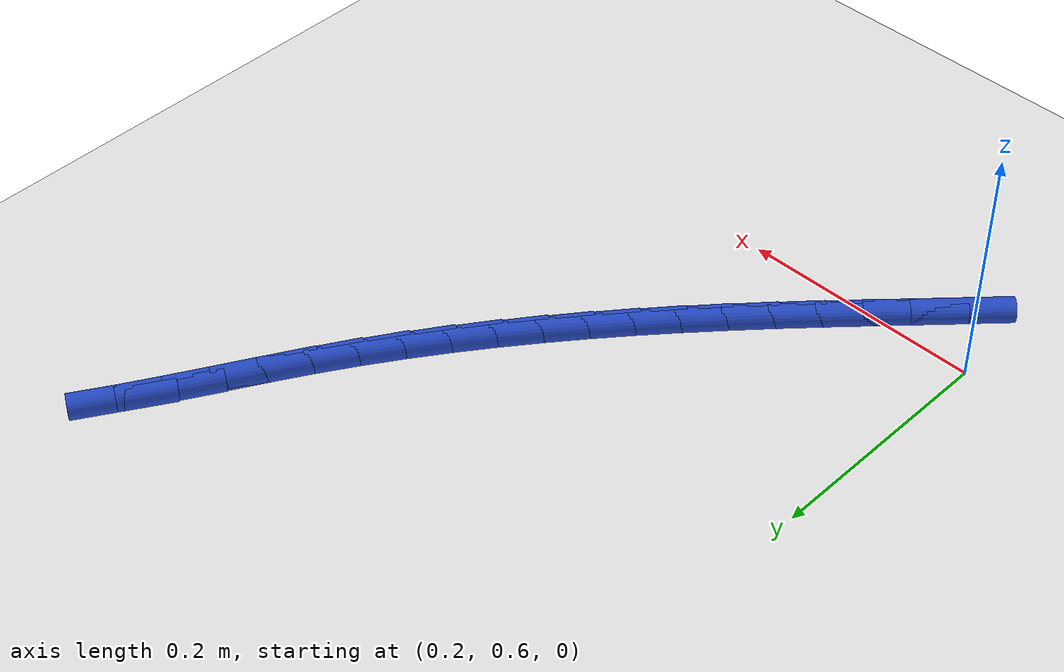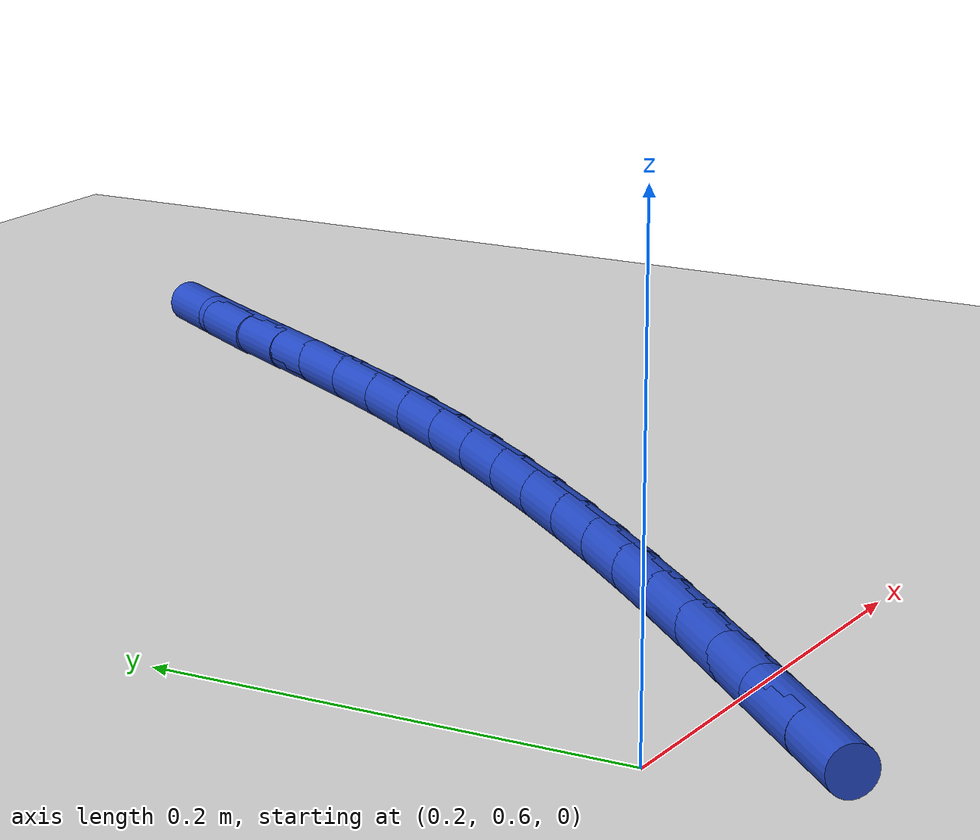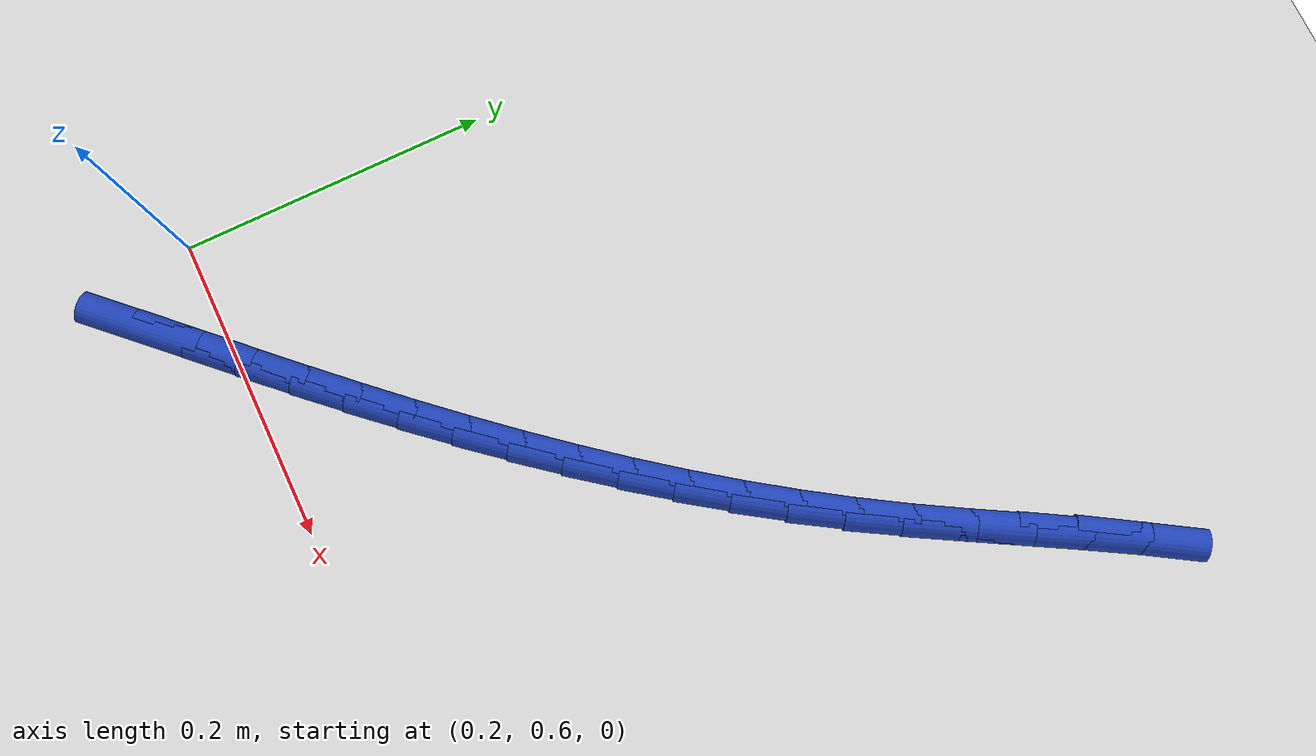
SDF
<sdf version="1.6">
 <world name="default">
  <model name="ground_plane">
   <static>1</static>
   <link name="link">
    <collision name="collision">
     <geometry><plane><normal>0 0 1</normal><size>100 100</size></plane></geometry>
     <surface><friction><ode><mu>100</mu><mu2>50</mu2></ode></friction></surface>
    </collision>
    <visual name="visual">
     <cast_shadows>0</cast_shadows>
     <geometry><plane><normal>0 0 1</normal><size>100 100</size></plane></geometry>
     <material>
      <script><uri>file://media/materials/scripts/gazebo.material</uri><name>Gazebo/WhiteGlow</name></script>
     </material>
    </visual>
   </link>
  </model>
  <model name="line">
   <link name="link_18">
    <pose>0.2377487492874765 0.5561914718747744 0.01 0 1.57 0.805005337333097</pose>
    <collision name="collision">
     <geometry><cylinder><radius>0.01</radius><length>0.08</length></cylinder></geometry>
    </collision>
    <visual name="visual">
     <material>
      <script><name>Gazebo/Blue</name><uri>file://media/materials/scripts/gazebo.material</uri></script>
     </material>
     <geometry><cylinder><radius>0.01</radius><length>0.08</length></cylinder></geometry>
    </visual>
   </link>
   <link name="link_19">
    <pose>0.2624871182830065 0.5819194705403488 0.01 0 1.57 0.8023469389558977</pose>
    <collision name="collision">
     <geometry><cylinder><radius>0.01</radius><length>0.08</length></cylinder></geometry>
    </collision>
    <visual name="visual">
     <material>
      <script><name>Gazebo/Blue</name><uri>file://media/materials/scripts/gazebo.material</uri></script>
     </material>
     <geometry><cylinder><radius>0.01</radius><length>0.08</length></cylinder></geometry>
    </visual>
   </link>
   <link name="link_20">
    <pose>0.2872773068792155 0.6075645571575645 0.01 0 1.57 0.8054867972096207</pose>
    <collision name="collision">
     <geometry><cylinder><radius>0.01</radius><length>0.08</length></cylinder></geometry>
    </collision>
    <visual name="visual">
     <material>
      <script><name>Gazebo/Blue</name><uri>file://media/materials/scripts/gazebo.material</uri></script>
     </material>
     <geometry><cylinder><radius>0.01</radius><length>0.08</length></cylinder></geometry>
    </visual>
   </link>
   <link name="link_21">
    <pose>0.31191539208825364 0.6332129652257473 0.01 0 1.57 0.8142932229291717</pose>
    <collision name="collision">
     <geometry><cylinder><radius>0.01</radius><length>0.08</length></cylinder></geometry>
    </collision>
    <visual name="visual">
     <material>
      <script><name>Gazebo/Blue</name><uri>file://media/materials/scripts/gazebo.material</uri></script>
     </material>
     <geometry><cylinder><radius>0.01</radius><length>0.08</length></cylinder></geometry>
    </visual>
   </link>
   <link name="link_22">
    <pose>0.33620566093731313 0.6589491539790912 0.01 0 1.57 0.8264717777717585</pose>
    <collision name="collision">
     <geometry><cylinder><radius>0.01</radius><length>0.08</length></cylinder></geometry>
    </collision>
    <visual name="visual">
     <material>
      <script><name>Gazebo/Blue</name><uri>file://media/materials/scripts/gazebo.material</uri></script>
     </material>
     <geometry><cylinder><radius>0.01</radius><length>0.08</length></cylinder></geometry>
    </visual>
   </link>
   <link name="link_23">
    <pose>0.36004934974041697 0.6848366309557953 0.01 0 1.57 0.8404883851443289</pose>
    <collision name="collision">
     <geometry><cylinder><radius>0.01</radius><length>0.08</length></cylinder></geometry>
    </collision>
    <visual name="visual">
     <material>
      <script><name>Gazebo/Blue</name><uri>file://media/materials/scripts/gazebo.material</uri></script>
     </material>
     <geometry><cylinder><radius>0.01</radius><length>0.08</length></cylinder></geometry>
    </visual>
   </link>
   <link name="link_24">
    <pose>0.38341096625520915 0.7109252301117648 0.01 0 1.57 0.856321380373999</pose>
    <collision name="collision">
     <geometry><cylinder><radius>0.01</radius><length>0.08</length></cylinder></geometry>
    </collision>
    <visual name="visual">
     <material>
      <script><name>Gazebo/Blue</name><uri>file://media/materials/scripts/gazebo.material</uri></script>
     </material>
     <geometry><cylinder><radius>0.01</radius><length>0.08</length></cylinder></geometry>
    </visual>
   </link>
   <link name="link_25">
    <pose>0.40625610575094306 0.737264550380932 0.01 0 1.57 0.8739669154203803</pose>
    <collision name="collision">
     <geometry><cylinder><radius>0.01</radius><length>0.08</length></cylinder></geometry>
    </collision>
    <visual name="visual">
     <material>
      <script><name>Gazebo/Blue</name><uri>file://media/materials/scripts/gazebo.material</uri></script>
     </material>
     <geometry><cylinder><radius>0.01</radius><length>0.08</length></cylinder></geometry>
    </visual>
   </link>
   <link name="link_26">
    <pose>0.4285503634968722 0.7639041906972294 0.01 0 1.57 0.8934103848790669</pose>
    <collision name="collision">
     <geometry><cylinder><radius>0.01</radius><length>0.08</length></cylinder></geometry>
    </collision>
    <visual name="visual">
     <material>
      <script><name>Gazebo/Blue</name><uri>file://media/materials/scripts/gazebo.material</uri></script>
     </material>
     <geometry><cylinder><radius>0.01</radius><length>0.08</length></cylinder></geometry>
    </visual>
   </link>
   <link name="link_27">
    <pose>0.45025933476225016 0.7908937499945897 0.01 0 1.57 0.9146247005952302</pose>
    <collision name="collision">
     <geometry><cylinder><radius>0.01</radius><length>0.08</length></cylinder></geometry>
    </collision>
    <visual name="visual">
     <material>
      <script><name>Gazebo/Blue</name><uri>file://media/materials/scripts/gazebo.material</uri></script>
     </material>
     <geometry><cylinder><radius>0.01</radius><length>0.08</length></cylinder></geometry>
    </visual>
   </link>
   <link name="link_28">
    <pose>0.4713486148163302 0.8182828272069447 0.01 0 1.57 0.9375685905325318</pose>
    <collision name="collision">
     <geometry><cylinder><radius>0.01</radius><length>0.08</length></cylinder></geometry>
    </collision>
    <visual name="visual">
     <material>
      <script><name>Gazebo/Blue</name><uri>file://media/materials/scripts/gazebo.material</uri></script>
     </material>
     <geometry><cylinder><radius>0.01</radius><length>0.08</length></cylinder></geometry>
    </visual>
   </link>
   <link name="link_29">
    <pose>0.4917837989283662 0.8461210212682273 0.01 0 1.57 0.9621850253438162</pose>
    <collision name="collision">
     <geometry><cylinder><radius>0.01</radius><length>0.08</length></cylinder></geometry>
    </collision>
    <visual name="visual">
     <material>
      <script><name>Gazebo/Blue</name><uri>file://media/materials/scripts/gazebo.material</uri></script>
     </material>
     <geometry><cylinder><radius>0.01</radius><length>0.08</length></cylinder></geometry>
    </visual>
   </link>
   <link name="link_30">
    <pose>0.5115304823676114 0.8744579311123699 0.01 0 1.57 0.9883998947306946</pose>
    <collision name="collision">
     <geometry><cylinder><radius>0.01</radius><length>0.08</length></cylinder></geometry>
    </collision>
    <visual name="visual">
     <material>
      <script><name>Gazebo/Blue</name><uri>file://media/materials/scripts/gazebo.material</uri></script>
     </material>
     <geometry><cylinder><radius>0.01</radius><length>0.08</length></cylinder></geometry>
    </visual>
   </link>
   <link name="link_31">
    <pose>0.5305542604033195 0.903343155673305 0.01 0 1.57 1.0161065852240692</pose>
    <collision name="collision">
     <geometry><cylinder><radius>0.01</radius><length>0.08</length></cylinder></geometry>
    </collision>
    <visual name="visual">
     <material>
      <script><name>Gazebo/Blue</name><uri>file://media/materials/scripts/gazebo.material</uri></script>
     </material>
     <geometry><cylinder><radius>0.01</radius><length>0.08</length></cylinder></geometry>
    </visual>
   </link>
   <link name="link_32">
    <pose>0.548821112902177 0.932825960905743 0.01 0 1.57 1.0412793506993445</pose>
    <collision name="collision">
     <geometry><cylinder><radius>0.01</radius><length>0.08</length></cylinder></geometry>
    </collision>
    <visual name="visual">
     <material>
      <script><name>Gazebo/Blue</name><uri>file://media/materials/scripts/gazebo.material</uri></script>
     </material>
     <geometry><cylinder><radius>0.01</radius><length>0.08</length></cylinder></geometry>
    </visual>
   </link>
   <link name="link_33">
    <pose>0.5664018999330775 0.9628648089131729 0.01 0 1.57 1.0547561598987694</pose>
    <collision name="collision">
     <geometry><cylinder><radius>0.01</radius><length>0.08</length></cylinder></geometry>
    </collision>
    <visual name="visual">
     <material>
      <script><name>Gazebo/Blue</name><uri>file://media/materials/scripts/gazebo.material</uri></script>
     </material>
     <geometry><cylinder><radius>0.01</radius><length>0.08</length></cylinder></geometry>
    </visual>
   </link>
   <link name="link_34">
    <pose>0.5836141434641883 0.993204605284772 0.01 0 1.57 1.0553595744026218</pose>
    <collision name="collision">
     <geometry><cylinder><radius>0.01</radius><length>0.08</length></cylinder></geometry>
    </collision>
    <visual name="visual">
     <material>
      <script><name>Gazebo/Blue</name><uri>file://media/materials/scripts/gazebo.material</uri></script>
     </material>
     <geometry><cylinder><radius>0.01</radius><length>0.08</length></cylinder></geometry>
    </visual>
   </link>
   <link name="link_35">
    <pose>0.6008107950556537 1.023559581151323 0.01 0 1.57 1.0430992853419483</pose>
    <collision name="collision">
     <geometry><cylinder><radius>0.01</radius><length>0.08</length></cylinder></geometry>
    </collision>
    <visual name="visual">
     <material>
      <script><name>Gazebo/Blue</name><uri>file://media/materials/scripts/gazebo.material</uri></script>
     </material>
     <geometry><cylinder><radius>0.01</radius><length>0.08</length></cylinder></geometry>
    </visual>
   </link>
   <link name="link_36">
    <pose>0.6183448062676196 1.0536439676436111 0.01 0 1.57 1.0178349097681956</pose>
    <collision name="collision">
     <geometry><cylinder><radius>0.01</radius><length>0.08</length></cylinder></geometry>
    </collision>
    <visual name="visual">
     <material>
      <script><name>Gazebo/Blue</name><uri>file://media/materials/scripts/gazebo.material</uri></script>
     </material>
     <geometry><cylinder><radius>0.01</radius><length>0.08</length></cylinder></geometry>
    </visual>
   </link>
  </model>
 </world>
</sdf>
